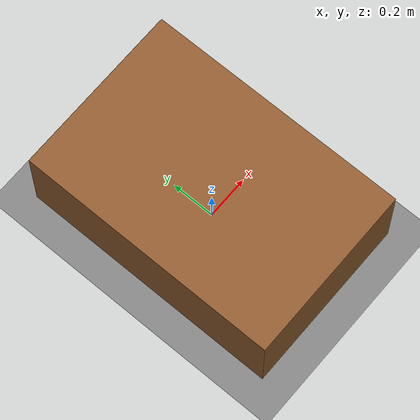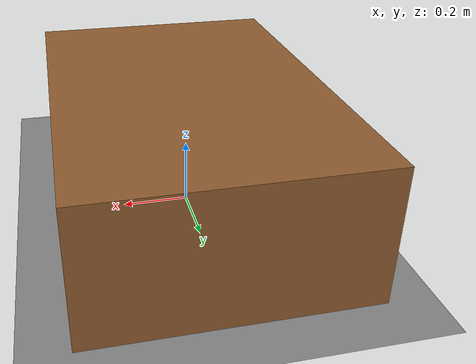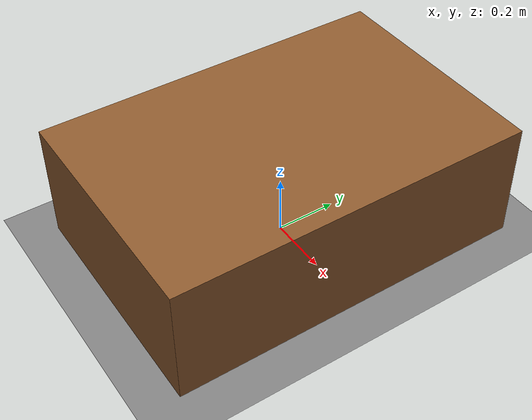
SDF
<?xml version="1.0"?>
<sdf version="1.10">
  <world name="pick_world">

    <!-- step 4ms (250Hz): nhẹ CPU hơn nhiều so với 1ms, đủ ổn định cho cánh tay
         điều khiển vị trí. Tăng RTF trên WSL. Nếu vẫn thấp -> chạy headless (gui:=false). -->
    <physics name="4ms" type="ignored">
      <max_step_size>0.004</max_step_size>
      <real_time_factor>1.0</real_time_factor>
    </physics>

    <plugin filename="gz-sim-physics-system"
            name="gz::sim::systems::Physics"/>
    <plugin filename="gz-sim-user-commands-system"
            name="gz::sim::systems::UserCommands"/>
    <plugin filename="gz-sim-scene-broadcaster-system"
            name="gz::sim::systems::SceneBroadcaster"/>
    <plugin filename="gz-sim-sensors-system"
            name="gz::sim::systems::Sensors">
      <render_engine>ogre2</render_engine>
    </plugin>

    <light type="directional" name="sun">
      <cast_shadows>true</cast_shadows>
      <pose>0 0 10 0 0 0</pose>
      <diffuse>0.9 0.9 0.9 1</diffuse>
      <specular>0.2 0.2 0.2 1</specular>
      <direction>-0.5 0.3 -1</direction>
    </light>

    <model name="ground_plane">
      <static>true</static>
      <link name="link">
        <collision name="collision">
          <geometry><plane><normal>0 0 1</normal><size>50 50</size></plane></geometry>
        </collision>
        <visual name="visual">
          <geometry><plane><normal>0 0 1</normal><size>50 50</size></plane></geometry>
          <material>
            <ambient>0.3 0.3 0.3 1</ambient>
            <diffuse>0.5 0.5 0.5 1</diffuse>
          </material>
        </visual>
      </link>
    </model>

    <!-- Bàn: hộp tĩnh, mặt bàn ở z = 0.4. Cánh tay và vật đặt lên mặt này. -->
    <model name="table">
      <static>true</static>
      <pose>0 0 0.2 0 0 0</pose>
      <link name="link">
        <collision name="collision">
          <geometry><box><size>0.8 1.2 0.4</size></box></geometry>
        </collision>
        <visual name="visual">
          <geometry><box><size>0.8 1.2 0.4</size></box></geometry>
          <material>
            <ambient>0.4 0.25 0.12 1</ambient>
            <diffuse>0.55 0.35 0.18 1</diffuse>
          </material>
        </visual>
      </link>
    </model>

  </world>
</sdf>
